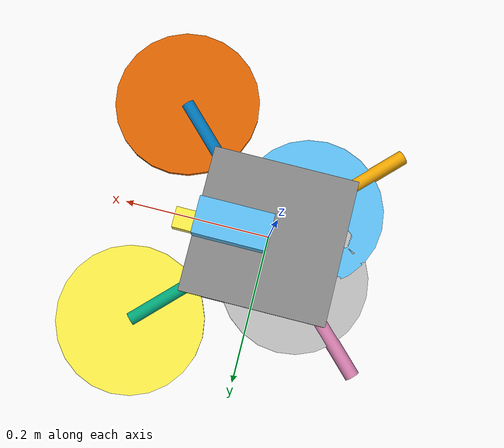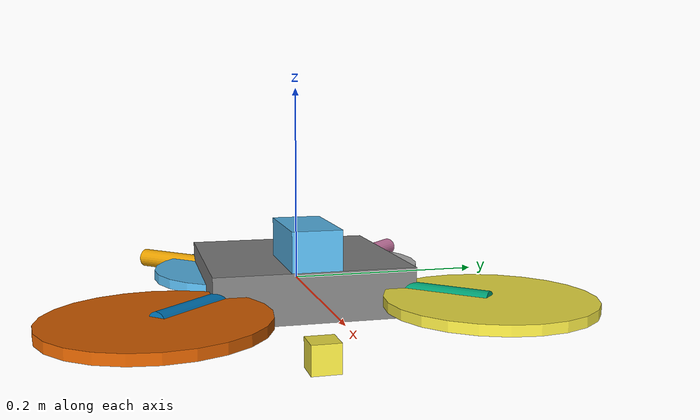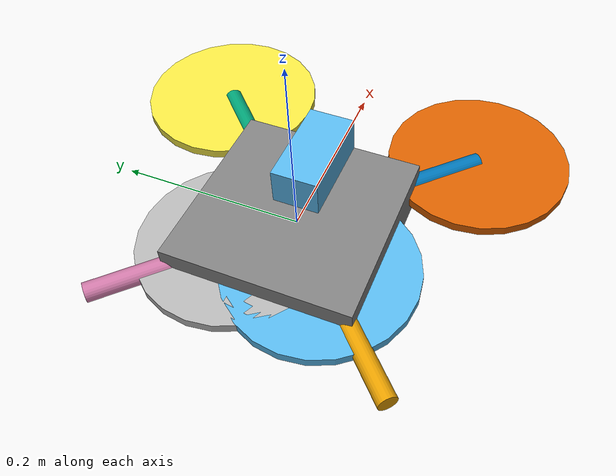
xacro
<?xml version="1.0"?>
<robot xmlns:xacro="http://www.ros.org/wiki/xacro" name="quadcopter">

  <!-- MASS BUDGET DASHBOARD (in kg)              -->
  <!-- Body: 900g -->
  <xacro:property name="mass_body" value="0.900" />
  <!-- Battery: 400g -->
  <xacro:property name="mass_battery" value="0.400" />
  <!-- 4 Arms: 80g total (20g each) -->
  <xacro:property name="mass_arm" value="0.020" />
  <!-- 4 Motors: 55g each -->
  <xacro:property name="mass_motor" value="0.055" />
  <!-- Gimbal + Camera: 50g total -->
  <xacro:property name="mass_gimbal_cam" value="0.050" />

  <!-- THRUST CONSTRAINTS (Reference Only)        -->
  <!-- Total Mass: 1.645 kg (~1.65 kg)            -->
  <!-- Target Hover Force (1g): 16.19 N           -->
  <!-- Target Max Thrust (2:1): 32.38 N           -->
  <!-- Required per motor: 8.09 N                 -->

  <!-- 1. INERTIA MATH MACROS                     -->
  <!-- Automatically calculates physics based on mass and size -->
  <xacro:macro name="box_inertia" params="m x y z">
    <inertial>
      <mass value="${m}"/>
      <inertia ixx="${(m/12)*(y*y + z*z)}" ixy="0" ixz="0"
               iyy="${(m/12)*(x*x + z*z)}" iyz="0"
               izz="${(m/12)*(x*x + y*y)}"/>
    </inertial>
  </xacro:macro>

  <xacro:macro name="cylinder_inertia" params="m r h">
    <inertial>
      <mass value="${m}"/>
      <inertia ixx="${(m/12)*(3*r*r + h*h)}" ixy="0" ixz="0"
               iyy="${(m/12)*(3*r*r + h*h)}" iyz="0"
               izz="${(m/2)*(r*r)}"/>
    </inertial>
  </xacro:macro>

  <!-- 2. CORE BODY & BATTERY                     -->
  <link name="base_link">
    <visual>
      <geometry><box size="0.2 0.2 0.05"/></geometry>
      <material name="gray"><color rgba="0.5 0.5 0.5 1"/></material>
    </visual>
    <collision>
      <geometry><box size="0.2 0.2 0.05"/></geometry>
    </collision>
    <!-- UPDATED: Replaced hardcoded 0.6 with the mass_body variable -->
    <xacro:box_inertia m="${mass_body}" x="0.2" y="0.2" z="0.05"/>
  </link>

  <!-- The battery shifts the center of gravity -->
  <link name="battery_link">
    <visual><geometry><box size="0.1 0.05 0.04"/></geometry></visual>
    <!-- UPDATED: Replaced hardcoded 0.4 with the mass_battery variable -->
    <xacro:box_inertia m="${mass_battery}" x="0.1" y="0.05" z="0.04"/>
  </link>

  <joint name="battery_joint" type="fixed">
    <parent link="base_link"/>
    <child link="battery_link"/>
    <!-- Mounted slightly forward and on top -->
    <origin xyz="0.05 0 0.045" rpy="0 0 0"/>
  </joint>

  <!-- 3. ARM AND ROTOR MACRO                     -->
  <!-- Write it once, use it 4 times!             -->
  <xacro:macro name="quad_arm" params="prefix x_pos y_pos rot_dir">

    <!-- The Arm Link -->
    <link name="arm_${prefix}">
      <visual><geometry><cylinder radius="0.01" length="0.15"/></geometry></visual>
      <!-- UPDATED: Replaced hardcoded 0.1 with the mass_arm variable -->
      <xacro:cylinder_inertia m="${mass_arm}" r="0.01" h="0.15"/>
    </link>

    <!-- Welded to the base -->
    <joint name="arm_${prefix}_joint" type="fixed">
      <parent link="base_link"/>
      <child link="arm_${prefix}"/>
      <!-- The math here angles the arm out to the corner -->
      <origin xyz="${x_pos} ${y_pos} 0" rpy="0 1.5708 ${rot_dir * 0.7854}"/>
    </joint>

    <!-- The Rotor Link -->
    <link name="rotor_${prefix}">
      <visual><geometry><cylinder radius="0.1" length="0.01"/></geometry></visual>
      <!-- Collision is ONLY the hub, not the blades -->
      <collision><geometry><cylinder radius="0.02" length="0.01"/></geometry></collision>
      <!-- UPDATED: Replaced hardcoded 0.05 with the mass_motor variable -->
      <xacro:cylinder_inertia m="${mass_motor}" r="0.1" h="0.01"/>
    </link>

    <!-- Continuous joint spinning on the Z axis -->
    <joint name="rotor_${prefix}_joint" type="continuous">
      <parent link="arm_${prefix}"/>
      <child link="rotor_${prefix}"/>
      <!-- Positioned at the end of the arm -->
      <origin xyz="0 0 0.075" rpy="0 -1.5708 0"/>
      <axis xyz="0 0 1"/>
    </joint>
  </xacro:macro>

  <!-- Instantiating the 4 arms/rotors using the macro -->
  <xacro:quad_arm prefix="fl" x_pos="0.1" y_pos="0.1" rot_dir="1"/>
  <xacro:quad_arm prefix="fr" x_pos="0.1" y_pos="-0.1" rot_dir="-1"/>
  <xacro:quad_arm prefix="rl" x_pos="-0.1" y_pos="0.1" rot_dir="-1"/>
  <xacro:quad_arm prefix="rr" x_pos="-0.1" y_pos="-0.1" rot_dir="1"/>

  <!-- 4. GIMBAL & CAMERA (Revolute limits)       -->
  <link name="gimbal_link">
    <visual><geometry><box size="0.02 0.02 0.02"/></geometry></visual>
    <!-- UPDATED: Dividing the total 50g gimbal/cam budget in half for the gimbal -->
    <xacro:box_inertia m="${mass_gimbal_cam / 2}" x="0.02" y="0.02" z="0.02"/>
  </link>

  <joint name="gimbal_pitch_joint" type="revolute">
    <parent link="base_link"/>
    <child link="gimbal_link"/>
    <origin xyz="0.1 0 -0.05" rpy="0 0 0"/>
    <axis xyz="0 1 0"/>
    <!-- Limits: -90 deg (-1.57 rad) to +30 deg (0.52 rad) -->
    <limit lower="-1.5708" upper="0.5236" effort="10" velocity="1.0"/>
  </joint>

  <link name="camera_link">
    <visual><geometry><box size="0.03 0.03 0.03"/></geometry></visual>
    <!-- UPDATED: Dividing the total 50g gimbal/cam budget in half for the camera -->
    <xacro:box_inertia m="${mass_gimbal_cam / 2}" x="0.03" y="0.03" z="0.03"/>
  </link>

  <joint name="camera_joint" type="fixed">
    <parent link="gimbal_link"/>
    <child link="camera_link"/>
    <origin xyz="0.02 0 0" rpy="0 0 0"/>
  </joint>

  <!-- 5. GAZEBO SENSORS                          -->
  <!-- Injecting real-world noise and update rates-->

  <!-- SENSORS ON THE CENTER OF MASS (BASE_LINK) -->
  <gazebo reference="base_link">

    <!-- 1. IMU (200 Hz) -->
    <sensor name="imu_sensor" type="imu">
      <always_on>1</always_on>
      <update_rate>200</update_rate>
      <visualize>true</visualize>
      <imu>
        <!-- Gaussian noise models real-world motor vibrations -->
        <angular_velocity>
          <x><noise type="gaussian"><mean>0.0</mean><stddev>0.0002</stddev><bias_mean>7.5e-06</bias_mean></noise></x>
          <y><noise type="gaussian"><mean>0.0</mean><stddev>0.0002</stddev><bias_mean>7.5e-06</bias_mean></noise></y>
          <z><noise type="gaussian"><mean>0.0</mean><stddev>0.0002</stddev><bias_mean>7.5e-06</bias_mean></noise></z>
        </angular_velocity>
        <linear_acceleration>
          <x><noise type="gaussian"><mean>0.0</mean><stddev>0.017</stddev><bias_mean>0.1</bias_mean></noise></x>
          <y><noise type="gaussian"><mean>0.0</mean><stddev>0.017</stddev><bias_mean>0.1</bias_mean></noise></y>
          <z><noise type="gaussian"><mean>0.0</mean><stddev>0.017</stddev><bias_mean>0.1</bias_mean></noise></z>
        </linear_acceleration>
      </imu>
    </sensor>

    <!-- 2. GPS / NAVSAT (10 Hz) -->
    <sensor name="gps_sensor" type="navsat">
      <always_on>1</always_on>
      <update_rate>10</update_rate>
      <navsat>
        <!-- Horizontal noise is tight, Vertical noise is loose due to satellite geometry -->
        <position_extension>
          <noise type="gaussian"><mean>0.0</mean><stddev>0.01</stddev></noise>
        </position_extension>
        <velocity_extension>
          <noise type="gaussian"><mean>0.0</mean><stddev>0.01</stddev></noise>
        </velocity_extension>
      </navsat>
    </sensor>

    <!-- 3. BAROMETER (50 Hz) -->
    <sensor name="baro_sensor" type="altimeter">
      <always_on>1</always_on>
      <update_rate>50</update_rate>
      <altimeter>
        <vertical_position>
          <!-- Small variance, but inherently drifts over time -->
          <noise type="gaussian"><mean>0.0</mean><stddev>0.01</stddev></noise>
        </vertical_position>
        <vertical_velocity>
          <noise type="gaussian"><mean>0.0</mean><stddev>0.01</stddev></noise>
        </vertical_velocity>
      </altimeter>
    </sensor>

    <!-- 4. DOWNWARD LIDAR (50 Hz) -->
    <!-- Modern Gazebo uses gpu_lidar. We rotate it -90 degrees (pitch) to point at the ground -->
    <sensor name="lidar_sensor" type="gpu_lidar">
      <always_on>1</always_on>
      <update_rate>50</update_rate>
      <pose>0 0 0 0 1.5708 0</pose>
      <ray>
        <scan>
          <horizontal><samples>1</samples><resolution>1</resolution><min_angle>0</min_angle><max_angle>0</max_angle></horizontal>
        </scan>
        <range><min>0.1</min><max>40.0</max><resolution>0.01</resolution></range>
        <noise type="gaussian"><mean>0.0</mean><stddev>0.005</stddev></noise>
      </ray>
    </sensor>
  </gazebo>

  <!-- CAMERA SENSOR (ON THE GIMBAL/CAMERA LINK)  -->
  <gazebo reference="camera_link">
    <!-- 5. RGB CAMERA (30 Hz) -->
    <sensor name="main_camera" type="camera">
      <always_on>1</always_on>
      <update_rate>30</update_rate>
      <visualize>true</visualize>
      <!-- Facing directly forward relative to the camera_link -->
      <pose>0 0 0 0 0 0</pose>
      <camera>
        <horizontal_fov>1.5708</horizontal_fov> <!-- 90 Degree Field of View -->
        <image>
          <width>1920</width>
          <height>1080</height>
          <format>R8G8B8</format>
        </image>
        <clip><near>0.1</near><far>1000.0</far></clip>
        <noise type="gaussian"><mean>0.0</mean><stddev>0.007</stddev></noise>
      </camera>
    </sensor>
  </gazebo>

</robot>
